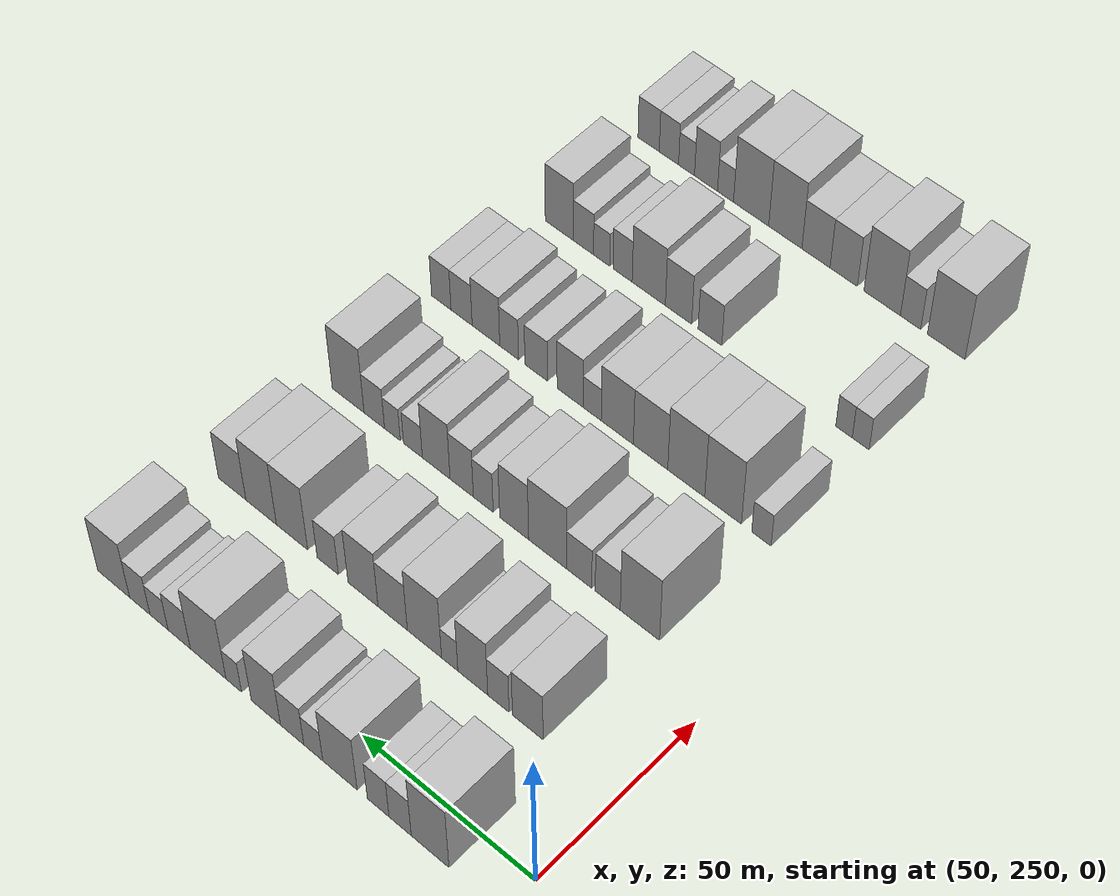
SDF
<sdf version="1.6">
 <world name="default">
  <model name="building_88">
   <static>1</static>
   <pose>50.0000 270.5247 0 0.000000 0.000000 0.000000</pose>
   <link name="link">
    <pose>0 0 12.00 0 0 0</pose>
    <collision name="collision"><geometry><box><size>20.0000 10.8127 24.0000</size></box></geometry></collision>
    <visual name="visual">
     <cast_shadows>0</cast_shadows>
     <geometry><box><size>20.0000 10.8127 24.0000</size></box></geometry>
     <material>
      <script>
       <uri>model://HANNAS_wall/materials/scripts</uri>
       <uri>model://HANNAS_wall/materials/textures</uri>
       <name>vrc/HANNAS_wall</name>
      </script>
     </material>
    </visual>
   </link>
  </model>
  <model name="building_89">
   <static>1</static>
   <pose>50.0000 279.1610 0 0.000000 0.000000 0.000000</pose>
   <link name="link">
    <pose>0 0 7.50 0 0 0</pose>
    <collision name="collision"><geometry><box><size>20.0000 6.4599 15.0000</size></box></geometry></collision>
    <visual name="visual">
     <cast_shadows>0</cast_shadows>
     <geometry><box><size>20.0000 6.4599 15.0000</size></box></geometry>
     <material>
      <script>
       <uri>model://HANNAS_wall/materials/scripts</uri>
       <uri>model://HANNAS_wall/materials/textures</uri>
       <name>vrc/HANNAS_wall</name>
      </script>
     </material>
    </visual>
   </link>
  </model>
  <model name="building_90">
   <static>1</static>
   <pose>50.0000 285.5674 0 0.000000 0.000000 0.000000</pose>
   <link name="link">
    <pose>0 0 7.50 0 0 0</pose>
    <collision name="collision"><geometry><box><size>20.0000 6.3528 15.0000</size></box></geometry></collision>
    <visual name="visual">
     <cast_shadows>0</cast_shadows>
     <geometry><box><size>20.0000 6.3528 15.0000</size></box></geometry>
     <material>
      <script>
       <uri>model://HANNAS_wall/materials/scripts</uri>
       <uri>model://HANNAS_wall/materials/textures</uri>
       <name>vrc/HANNAS_wall</name>
      </script>
     </material>
    </visual>
   </link>
  </model>
  <model name="building_91">
   <static>1</static>
   <pose>50.0000 296.8484 0 0.000000 0.000000 0.000000</pose>
   <link name="link">
    <pose>0 0 10.50 0 0 0</pose>
    <collision name="collision"><geometry><box><size>20.0000 10.2094 21.0000</size></box></geometry></collision>
    <visual name="visual">
     <cast_shadows>0</cast_shadows>
     <geometry><box><size>20.0000 10.2094 21.0000</size></box></geometry>
     <material>
      <script>
       <uri>model://HANNAS_wall/materials/scripts</uri>
       <uri>model://HANNAS_wall/materials/textures</uri>
       <name>vrc/HANNAS_wall</name>
      </script>
     </material>
    </visual>
   </link>
  </model>
  <model name="building_92">
   <static>1</static>
   <pose>50.0000 304.7949 0 0.000000 0.000000 0.000000</pose>
   <link name="link">
    <pose>0 0 6.00 0 0 0</pose>
    <collision name="collision"><geometry><box><size>20.0000 5.6836 12.0000</size></box></geometry></collision>
    <visual name="visual">
     <cast_shadows>0</cast_shadows>
     <geometry><box><size>20.0000 5.6836 12.0000</size></box></geometry>
     <material>
      <script>
       <uri>model://HANNAS_wall/materials/scripts</uri>
       <uri>model://HANNAS_wall/materials/textures</uri>
       <name>vrc/HANNAS_wall</name>
      </script>
     </material>
    </visual>
   </link>
  </model>
  <model name="building_93">
   <static>1</static>
   <pose>50.0000 311.1766 0 0.000000 0.000000 0.000000</pose>
   <link name="link">
    <pose>0 0 7.50 0 0 0</pose>
    <collision name="collision"><geometry><box><size>20.0000 7.0799 15.0000</size></box></geometry></collision>
    <visual name="visual">
     <cast_shadows>0</cast_shadows>
     <geometry><box><size>20.0000 7.0799 15.0000</size></box></geometry>
     <material>
      <script>
       <uri>model://HANNAS_wall/materials/scripts</uri>
       <uri>model://HANNAS_wall/materials/textures</uri>
       <name>vrc/HANNAS_wall</name>
      </script>
     </material>
    </visual>
   </link>
  </model>
  <model name="building_94">
   <static>1</static>
   <pose>50.0000 319.1856 0 0.000000 0.000000 0.000000</pose>
   <link name="link">
    <pose>0 0 10.50 0 0 0</pose>
    <collision name="collision"><geometry><box><size>20.0000 8.9381 21.0000</size></box></geometry></collision>
    <visual name="visual">
     <cast_shadows>0</cast_shadows>
     <geometry><box><size>20.0000 8.9381 21.0000</size></box></geometry>
     <material>
      <script>
       <uri>model://HANNAS_wall/materials/scripts</uri>
       <uri>model://HANNAS_wall/materials/textures</uri>
       <name>vrc/HANNAS_wall</name>
      </script>
     </material>
    </visual>
   </link>
  </model>
  <model name="building_95">
   <static>1</static>
   <pose>50.0000 329.0672 0 0.000000 0.000000 0.000000</pose>
   <link name="link">
    <pose>0 0 6.00 0 0 0</pose>
    <collision name="collision"><geometry><box><size>20.0000 4.8250 12.0000</size></box></geometry></collision>
    <visual name="visual">
     <cast_shadows>0</cast_shadows>
     <geometry><box><size>20.0000 4.8250 12.0000</size></box></geometry>
     <material>
      <script>
       <uri>model://HANNAS_wall/materials/scripts</uri>
       <uri>model://HANNAS_wall/materials/textures</uri>
       <name>vrc/HANNAS_wall</name>
      </script>
     </material>
    </visual>
   </link>
  </model>
  <model name="building_96">
   <static>1</static>
   <pose>50.0000 337.0704 0 0.000000 0.000000 0.000000</pose>
   <link name="link">
    <pose>0 0 12.00 0 0 0</pose>
    <collision name="collision"><geometry><box><size>20.0000 11.1813 24.0000</size></box></geometry></collision>
    <visual name="visual">
     <cast_shadows>0</cast_shadows>
     <geometry><box><size>20.0000 11.1813 24.0000</size></box></geometry>
     <material>
      <script>
       <uri>model://HANNAS_wall/materials/scripts</uri>
       <uri>model://HANNAS_wall/materials/textures</uri>
       <name>vrc/HANNAS_wall</name>
      </script>
     </material>
    </visual>
   </link>
  </model>
  <model name="building_97">
   <static>1</static>
   <pose>50.0000 346.1988 0 0.000000 0.000000 0.000000</pose>
   <link name="link">
    <pose>0 0 7.50 0 0 0</pose>
    <collision name="collision"><geometry><box><size>20.0000 7.0755 15.0000</size></box></geometry></collision>
    <visual name="visual">
     <cast_shadows>0</cast_shadows>
     <geometry><box><size>20.0000 7.0755 15.0000</size></box></geometry>
     <material>
      <script>
       <uri>model://HANNAS_wall/materials/scripts</uri>
       <uri>model://HANNAS_wall/materials/textures</uri>
       <name>vrc/HANNAS_wall</name>
      </script>
     </material>
    </visual>
   </link>
  </model>
  <model name="building_98">
   <static>1</static>
   <pose>50.0000 352.6234 0 0.000000 0.000000 0.000000</pose>
   <link name="link">
    <pose>0 0 6.00 0 0 0</pose>
    <collision name="collision"><geometry><box><size>20.0000 5.7739 12.0000</size></box></geometry></collision>
    <visual name="visual">
     <cast_shadows>0</cast_shadows>
     <geometry><box><size>20.0000 5.7739 12.0000</size></box></geometry>
     <material>
      <script>
       <uri>model://HANNAS_wall/materials/scripts</uri>
       <uri>model://HANNAS_wall/materials/textures</uri>
       <name>vrc/HANNAS_wall</name>
      </script>
     </material>
    </visual>
   </link>
  </model>
  <model name="building_99">
   <static>1</static>
   <pose>50.0000 358.7915 0 0.000000 0.000000 0.000000</pose>
   <link name="link">
    <pose>0 0 7.50 0 0 0</pose>
    <collision name="collision"><geometry><box><size>20.0000 6.5623 15.0000</size></box></geometry></collision>
    <visual name="visual">
     <cast_shadows>0</cast_shadows>
     <geometry><box><size>20.0000 6.5623 15.0000</size></box></geometry>
     <material>
      <script>
       <uri>model://HANNAS_wall/materials/scripts</uri>
       <uri>model://HANNAS_wall/materials/textures</uri>
       <name>vrc/HANNAS_wall</name>
      </script>
     </material>
    </visual>
   </link>
  </model>
  <model name="building_100">
   <static>1</static>
   <pose>50.0000 367.2585 0 0.000000 0.000000 0.000000</pose>
   <link name="link">
    <pose>0 0 10.50 0 0 0</pose>
    <collision name="collision"><geometry><box><size>20.0000 10.3717 21.0000</size></box></geometry></collision>
    <visual name="visual">
     <cast_shadows>0</cast_shadows>
     <geometry><box><size>20.0000 10.3717 21.0000</size></box></geometry>
     <material>
      <script>
       <uri>model://HANNAS_wall/materials/scripts</uri>
       <uri>model://HANNAS_wall/materials/textures</uri>
       <name>vrc/HANNAS_wall</name>
      </script>
     </material>
    </visual>
   </link>
  </model>
  <model name="building_216">
   <static>1</static>
   <pose>85.0000 275.5664 0 0.000000 0.000000 0.000000</pose>
   <link name="link">
    <pose>0 0 9.00 0 0 0</pose>
    <collision name="collision"><geometry><box><size>20.0000 8.8827 18.0000</size></box></geometry></collision>
    <visual name="visual">
     <cast_shadows>0</cast_shadows>
     <geometry><box><size>20.0000 8.8827 18.0000</size></box></geometry>
     <material>
      <script>
       <uri>model://HANNAS_wall/materials/scripts</uri>
       <uri>model://HANNAS_wall/materials/textures</uri>
       <name>vrc/HANNAS_wall</name>
      </script>
     </material>
    </visual>
   </link>
  </model>
  <model name="building_217">
   <static>1</static>
   <pose>85.0000 284.1300 0 0.000000 0.000000 0.000000</pose>
   <link name="link">
    <pose>0 0 7.50 0 0 0</pose>
    <collision name="collision"><geometry><box><size>20.0000 6.2444 15.0000</size></box></geometry></collision>
    <visual name="visual">
     <cast_shadows>0</cast_shadows>
     <geometry><box><size>20.0000 6.2444 15.0000</size></box></geometry>
     <material>
      <script>
       <uri>model://HANNAS_wall/materials/scripts</uri>
       <uri>model://HANNAS_wall/materials/textures</uri>
       <name>vrc/HANNAS_wall</name>
      </script>
     </material>
    </visual>
   </link>
  </model>
  <model name="building_218">
   <static>1</static>
   <pose>85.0000 291.6816 0 0.000000 0.000000 0.000000</pose>
   <link name="link">
    <pose>0 0 10.50 0 0 0</pose>
    <collision name="collision"><geometry><box><size>20.0000 8.8589 21.0000</size></box></geometry></collision>
    <visual name="visual">
     <cast_shadows>0</cast_shadows>
     <geometry><box><size>20.0000 8.8589 21.0000</size></box></geometry>
     <material>
      <script>
       <uri>model://HANNAS_wall/materials/scripts</uri>
       <uri>model://HANNAS_wall/materials/textures</uri>
       <name>vrc/HANNAS_wall</name>
      </script>
     </material>
    </visual>
   </link>
  </model>
  <model name="building_219">
   <static>1</static>
   <pose>85.0000 298.5380 0 0.000000 0.000000 0.000000</pose>
   <link name="link">
    <pose>0 0 6.00 0 0 0</pose>
    <collision name="collision"><geometry><box><size>20.0000 4.8538 12.0000</size></box></geometry></collision>
    <visual name="visual">
     <cast_shadows>0</cast_shadows>
     <geometry><box><size>20.0000 4.8538 12.0000</size></box></geometry>
     <material>
      <script>
       <uri>model://HANNAS_wall/materials/scripts</uri>
       <uri>model://HANNAS_wall/materials/textures</uri>
       <name>vrc/HANNAS_wall</name>
      </script>
     </material>
    </visual>
   </link>
  </model>
  <model name="building_220">
   <static>1</static>
   <pose>85.0000 306.1239 0 0.000000 0.000000 0.000000</pose>
   <link name="link">
    <pose>0 0 12.00 0 0 0</pose>
    <collision name="collision"><geometry><box><size>20.0000 10.3181 24.0000</size></box></geometry></collision>
    <visual name="visual">
     <cast_shadows>0</cast_shadows>
     <geometry><box><size>20.0000 10.3181 24.0000</size></box></geometry>
     <material>
      <script>
       <uri>model://HANNAS_wall/materials/scripts</uri>
       <uri>model://HANNAS_wall/materials/textures</uri>
       <name>vrc/HANNAS_wall</name>
      </script>
     </material>
    </visual>
   </link>
  </model>
  <model name="building_221">
   <static>1</static>
   <pose>85.0000 315.7586 0 0.000000 0.000000 0.000000</pose>
   <link name="link">
    <pose>0 0 9.00 0 0 0</pose>
    <collision name="collision"><geometry><box><size>20.0000 8.9513 18.0000</size></box></geometry></collision>
    <visual name="visual">
     <cast_shadows>0</cast_shadows>
     <geometry><box><size>20.0000 8.9513 18.0000</size></box></geometry>
     <material>
      <script>
       <uri>model://HANNAS_wall/materials/scripts</uri>
       <uri>model://HANNAS_wall/materials/textures</uri>
       <name>vrc/HANNAS_wall</name>
      </script>
     </material>
    </visual>
   </link>
  </model>
  <model name="building_222">
   <static>1</static>
   <pose>85.0000 324.8731 0 0.000000 0.000000 0.000000</pose>
   <link name="link">
    <pose>0 0 10.50 0 0 0</pose>
    <collision name="collision"><geometry><box><size>20.0000 9.2776 21.0000</size></box></geometry></collision>
    <visual name="visual">
     <cast_shadows>0</cast_shadows>
     <geometry><box><size>20.0000 9.2776 21.0000</size></box></geometry>
     <material>
      <script>
       <uri>model://HANNAS_wall/materials/scripts</uri>
       <uri>model://HANNAS_wall/materials/textures</uri>
       <name>vrc/HANNAS_wall</name>
      </script>
     </material>
    </visual>
   </link>
  </model>
  <model name="building_223">
   <static>1</static>
   <pose>85.0000 335.8381 0 0.000000 0.000000 0.000000</pose>
   <link name="link">
    <pose>0 0 7.50 0 0 0</pose>
    <collision name="collision"><geometry><box><size>20.0000 6.6525 15.0000</size></box></geometry></collision>
    <visual name="visual">
     <cast_shadows>0</cast_shadows>
     <geometry><box><size>20.0000 6.6525 15.0000</size></box></geometry>
     <material>
      <script>
       <uri>model://HANNAS_wall/materials/scripts</uri>
       <uri>model://HANNAS_wall/materials/textures</uri>
       <name>vrc/HANNAS_wall</name>
      </script>
     </material>
    </visual>
   </link>
  </model>
  <model name="building_224">
   <static>1</static>
   <pose>85.0000 347.1296 0 0.000000 0.000000 0.000000</pose>
   <link name="link">
    <pose>0 0 12.00 0 0 0</pose>
    <collision name="collision"><geometry><box><size>20.0000 9.9305 24.0000</size></box></geometry></collision>
    <visual name="visual">
     <cast_shadows>0</cast_shadows>
     <geometry><box><size>20.0000 9.9305 24.0000</size></box></geometry>
     <material>
      <script>
       <uri>model://HANNAS_wall/materials/scripts</uri>
       <uri>model://HANNAS_wall/materials/textures</uri>
       <name>vrc/HANNAS_wall</name>
      </script>
     </material>
    </visual>
   </link>
  </model>
  <model name="building_225">
   <static>1</static>
   <pose>85.0000 357.0071 0 0.000000 0.000000 0.000000</pose>
   <link name="link">
    <pose>0 0 12.00 0 0 0</pose>
    <collision name="collision"><geometry><box><size>20.0000 9.8245 24.0000</size></box></geometry></collision>
    <visual name="visual">
     <cast_shadows>0</cast_shadows>
     <geometry><box><size>20.0000 9.8245 24.0000</size></box></geometry>
     <material>
      <script>
       <uri>model://HANNAS_wall/materials/scripts</uri>
       <uri>model://HANNAS_wall/materials/textures</uri>
       <name>vrc/HANNAS_wall</name>
      </script>
     </material>
    </visual>
   </link>
  </model>
  <model name="building_226">
   <static>1</static>
   <pose>85.0000 366.3781 0 0.000000 0.000000 0.000000</pose>
   <link name="link">
    <pose>0 0 9.00 0 0 0</pose>
    <collision name="collision"><geometry><box><size>20.0000 8.9176 18.0000</size></box></geometry></collision>
    <visual name="visual">
     <cast_shadows>0</cast_shadows>
     <geometry><box><size>20.0000 8.9176 18.0000</size></box></geometry>
     <material>
      <script>
       <uri>model://HANNAS_wall/materials/scripts</uri>
       <uri>model://HANNAS_wall/materials/textures</uri>
       <name>vrc/HANNAS_wall</name>
      </script>
     </material>
    </visual>
   </link>
  </model>
  <model name="building_345">
   <static>1</static>
   <pose>120.0000 274.8458 0 0.000000 0.000000 0.000000</pose>
   <link name="link">
    <pose>0 0 12.00 0 0 0</pose>
    <collision name="collision"><geometry><box><size>20.0000 11.4162 24.0000</size></box></geometry></collision>
    <visual name="visual">
     <cast_shadows>0</cast_shadows>
     <geometry><box><size>20.0000 11.4162 24.0000</size></box></geometry>
     <material>
      <script>
       <uri>model://HANNAS_wall/materials/scripts</uri>
       <uri>model://HANNAS_wall/materials/textures</uri>
       <name>vrc/HANNAS_wall</name>
      </script>
     </material>
    </visual>
   </link>
  </model>
  <model name="building_346">
   <static>1</static>
   <pose>120.0000 284.2434 0 0.000000 0.000000 0.000000</pose>
   <link name="link">
    <pose>0 0 7.50 0 0 0</pose>
    <collision name="collision"><geometry><box><size>20.0000 7.3789 15.0000</size></box></geometry></collision>
    <visual name="visual">
     <cast_shadows>0</cast_shadows>
     <geometry><box><size>20.0000 7.3789 15.0000</size></box></geometry>
     <material>
      <script>
       <uri>model://HANNAS_wall/materials/scripts</uri>
       <uri>model://HANNAS_wall/materials/textures</uri>
       <name>vrc/HANNAS_wall</name>
      </script>
     </material>
    </visual>
   </link>
  </model>
  <model name="building_347">
   <static>1</static>
   <pose>120.0000 292.6446 0 0.000000 0.000000 0.000000</pose>
   <link name="link">
    <pose>0 0 7.50 0 0 0</pose>
    <collision name="collision"><geometry><box><size>20.0000 7.4235 15.0000</size></box></geometry></collision>
    <visual name="visual">
     <cast_shadows>0</cast_shadows>
     <geometry><box><size>20.0000 7.4235 15.0000</size></box></geometry>
     <material>
      <script>
       <uri>model://HANNAS_wall/materials/scripts</uri>
       <uri>model://HANNAS_wall/materials/textures</uri>
       <name>vrc/HANNAS_wall</name>
      </script>
     </material>
    </visual>
   </link>
  </model>
  <model name="building_348">
   <static>1</static>
   <pose>120.0000 302.1061 0 0.000000 0.000000 0.000000</pose>
   <link name="link">
    <pose>0 0 12.00 0 0 0</pose>
    <collision name="collision"><geometry><box><size>20.0000 11.4995 24.0000</size></box></geometry></collision>
    <visual name="visual">
     <cast_shadows>0</cast_shadows>
     <geometry><box><size>20.0000 11.4995 24.0000</size></box></geometry>
     <material>
      <script>
       <uri>model://HANNAS_wall/materials/scripts</uri>
       <uri>model://HANNAS_wall/materials/textures</uri>
       <name>vrc/HANNAS_wall</name>
      </script>
     </material>
    </visual>
   </link>
  </model>
  <model name="building_349">
   <static>1</static>
   <pose>120.0000 312.2673 0 0.000000 0.000000 0.000000</pose>
   <link name="link">
    <pose>0 0 10.50 0 0 0</pose>
    <collision name="collision"><geometry><box><size>20.0000 8.8228 21.0000</size></box></geometry></collision>
    <visual name="visual">
     <cast_shadows>0</cast_shadows>
     <geometry><box><size>20.0000 8.8228 21.0000</size></box></geometry>
     <material>
      <script>
       <uri>model://HANNAS_wall/materials/scripts</uri>
       <uri>model://HANNAS_wall/materials/textures</uri>
       <name>vrc/HANNAS_wall</name>
      </script>
     </material>
    </visual>
   </link>
  </model>
  <model name="building_350">
   <static>1</static>
   <pose>120.0000 321.7438 0 0.000000 0.000000 0.000000</pose>
   <link name="link">
    <pose>0 0 7.50 0 0 0</pose>
    <collision name="collision"><geometry><box><size>20.0000 6.1302 15.0000</size></box></geometry></collision>
    <visual name="visual">
     <cast_shadows>0</cast_shadows>
     <geometry><box><size>20.0000 6.1302 15.0000</size></box></geometry>
     <material>
      <script>
       <uri>model://HANNAS_wall/materials/scripts</uri>
       <uri>model://HANNAS_wall/materials/textures</uri>
       <name>vrc/HANNAS_wall</name>
      </script>
     </material>
    </visual>
   </link>
  </model>
  <model name="building_351">
   <static>1</static>
   <pose>120.0000 328.4370 0 0.000000 0.000000 0.000000</pose>
   <link name="link">
    <pose>0 0 9.00 0 0 0</pose>
    <collision name="collision"><geometry><box><size>20.0000 7.2563 18.0000</size></box></geometry></collision>
    <visual name="visual">
     <cast_shadows>0</cast_shadows>
     <geometry><box><size>20.0000 7.2563 18.0000</size></box></geometry>
     <material>
      <script>
       <uri>model://HANNAS_wall/materials/scripts</uri>
       <uri>model://HANNAS_wall/materials/textures</uri>
       <name>vrc/HANNAS_wall</name>
      </script>
     </material>
    </visual>
   </link>
  </model>
  <model name="building_352">
   <static>1</static>
   <pose>120.0000 336.4227 0 0.000000 0.000000 0.000000</pose>
   <link name="link">
    <pose>0 0 10.50 0 0 0</pose>
    <collision name="collision"><geometry><box><size>20.0000 8.7149 21.0000</size></box></geometry></collision>
    <visual name="visual">
     <cast_shadows>0</cast_shadows>
     <geometry><box><size>20.0000 8.7149 21.0000</size></box></geometry>
     <material>
      <script>
       <uri>model://HANNAS_wall/materials/scripts</uri>
       <uri>model://HANNAS_wall/materials/textures</uri>
       <name>vrc/HANNAS_wall</name>
      </script>
     </material>
    </visual>
   </link>
  </model>
  <model name="building_353">
   <static>1</static>
   <pose>120.0000 343.7650 0 0.000000 0.000000 0.000000</pose>
   <link name="link">
    <pose>0 0 6.00 0 0 0</pose>
    <collision name="collision"><geometry><box><size>20.0000 5.9697 12.0000</size></box></geometry></collision>
    <visual name="visual">
     <cast_shadows>0</cast_shadows>
     <geometry><box><size>20.0000 5.9697 12.0000</size></box></geometry>
     <material>
      <script>
       <uri>model://HANNAS_wall/materials/scripts</uri>
       <uri>model://HANNAS_wall/materials/textures</uri>
       <name>vrc/HANNAS_wall</name>
      </script>
     </material>
    </visual>
   </link>
  </model>
  <model name="building_354">
   <static>1</static>
   <pose>120.0000 350.2723 0 0.000000 0.000000 0.000000</pose>
   <link name="link">
    <pose>0 0 6.00 0 0 0</pose>
    <collision name="collision"><geometry><box><size>20.0000 5.0449 12.0000</size></box></geometry></collision>
    <visual name="visual">
     <cast_shadows>0</cast_shadows>
     <geometry><box><size>20.0000 5.0449 12.0000</size></box></geometry>
     <material>
      <script>
       <uri>model://HANNAS_wall/materials/scripts</uri>
       <uri>model://HANNAS_wall/materials/textures</uri>
       <name>vrc/HANNAS_wall</name>
      </script>
     </material>
    </visual>
   </link>
  </model>
  <model name="building_355">
   <static>1</static>
   <pose>120.0000 356.0883 0 0.000000 0.000000 0.000000</pose>
   <link name="link">
    <pose>0 0 7.50 0 0 0</pose>
    <collision name="collision"><geometry><box><size>20.0000 6.5872 15.0000</size></box></geometry></collision>
    <visual name="visual">
     <cast_shadows>0</cast_shadows>
     <geometry><box><size>20.0000 6.5872 15.0000</size></box></geometry>
     <material>
      <script>
       <uri>model://HANNAS_wall/materials/scripts</uri>
       <uri>model://HANNAS_wall/materials/textures</uri>
       <name>vrc/HANNAS_wall</name>
      </script>
     </material>
    </visual>
   </link>
  </model>
  <model name="building_356">
   <static>1</static>
   <pose>120.0000 364.5451 0 0.000000 0.000000 0.000000</pose>
   <link name="link">
    <pose>0 0 12.00 0 0 0</pose>
    <collision name="collision"><geometry><box><size>20.0000 10.3263 24.0000</size></box></geometry></collision>
    <visual name="visual">
     <cast_shadows>0</cast_shadows>
     <geometry><box><size>20.0000 10.3263 24.0000</size></box></geometry>
     <material>
      <script>
       <uri>model://HANNAS_wall/materials/scripts</uri>
       <uri>model://HANNAS_wall/materials/textures</uri>
       <name>vrc/HANNAS_wall</name>
      </script>
     </material>
    </visual>
   </link>
  </model>
  <model name="building_471">
   <static>1</static>
   <pose>155.0000 269.8274 0 0.000000 0.000000 0.000000</pose>
   <link name="link">
    <pose>0 0 6.00 0 0 0</pose>
    <collision name="collision"><geometry><box><size>20.0000 5.6359 12.0000</size></box></geometry></collision>
    <visual name="visual">
     <cast_shadows>0</cast_shadows>
     <geometry><box><size>20.0000 5.6359 12.0000</size></box></geometry>
     <material>
      <script>
       <uri>model://HANNAS_wall/materials/scripts</uri>
       <uri>model://HANNAS_wall/materials/textures</uri>
       <name>vrc/HANNAS_wall</name>
      </script>
     </material>
    </visual>
   </link>
  </model>
  <model name="building_472">
   <static>1</static>
   <pose>155.0000 281.0553 0 0.000000 0.000000 0.000000</pose>
   <link name="link">
    <pose>0 0 12.00 0 0 0</pose>
    <collision name="collision"><geometry><box><size>20.0000 10.8199 24.0000</size></box></geometry></collision>
    <visual name="visual">
     <cast_shadows>0</cast_shadows>
     <geometry><box><size>20.0000 10.8199 24.0000</size></box></geometry>
     <material>
      <script>
       <uri>model://HANNAS_wall/materials/scripts</uri>
       <uri>model://HANNAS_wall/materials/textures</uri>
       <name>vrc/HANNAS_wall</name>
      </script>
     </material>
    </visual>
   </link>
  </model>
  <model name="building_473">
   <static>1</static>
   <pose>155.0000 291.9815 0 0.000000 0.000000 0.000000</pose>
   <link name="link">
    <pose>0 0 12.00 0 0 0</pose>
    <collision name="collision"><geometry><box><size>20.0000 11.0326 24.0000</size></box></geometry></collision>
    <visual name="visual">
     <cast_shadows>0</cast_shadows>
     <geometry><box><size>20.0000 11.0326 24.0000</size></box></geometry>
     <material>
      <script>
       <uri>model://HANNAS_wall/materials/scripts</uri>
       <uri>model://HANNAS_wall/materials/textures</uri>
       <name>vrc/HANNAS_wall</name>
      </script>
     </material>
    </visual>
   </link>
  </model>
  <model name="building_474">
   <static>1</static>
   <pose>155.0000 302.7013 0 0.000000 0.000000 0.000000</pose>
   <link name="link">
    <pose>0 0 10.50 0 0 0</pose>
    <collision name="collision"><geometry><box><size>20.0000 10.4070 21.0000</size></box></geometry></collision>
    <visual name="visual">
     <cast_shadows>0</cast_shadows>
     <geometry><box><size>20.0000 10.4070 21.0000</size></box></geometry>
     <material>
      <script>
       <uri>model://HANNAS_wall/materials/scripts</uri>
       <uri>model://HANNAS_wall/materials/textures</uri>
       <name>vrc/HANNAS_wall</name>
      </script>
     </material>
    </visual>
   </link>
  </model>
  <model name="building_475">
   <static>1</static>
   <pose>155.0000 312.8124 0 0.000000 0.000000 0.000000</pose>
   <link name="link">
    <pose>0 0 10.50 0 0 0</pose>
    <collision name="collision"><geometry><box><size>20.0000 9.8151 21.0000</size></box></geometry></collision>
    <visual name="visual">
     <cast_shadows>0</cast_shadows>
     <geometry><box><size>20.0000 9.8151 21.0000</size></box></geometry>
     <material>
      <script>
       <uri>model://HANNAS_wall/materials/scripts</uri>
       <uri>model://HANNAS_wall/materials/textures</uri>
       <name>vrc/HANNAS_wall</name>
      </script>
     </material>
    </visual>
   </link>
  </model>
  <model name="building_476">
   <static>1</static>
   <pose>155.0000 320.5267 0 0.000000 0.000000 0.000000</pose>
   <link name="link">
    <pose>0 0 6.00 0 0 0</pose>
    <collision name="collision"><geometry><box><size>20.0000 5.6135 12.0000</size></box></geometry></collision>
    <visual name="visual">
     <cast_shadows>0</cast_shadows>
     <geometry><box><size>20.0000 5.6135 12.0000</size></box></geometry>
     <material>
      <script>
       <uri>model://HANNAS_wall/materials/scripts</uri>
       <uri>model://HANNAS_wall/materials/textures</uri>
       <name>vrc/HANNAS_wall</name>
      </script>
     </material>
    </visual>
   </link>
  </model>
  <model name="building_477">
   <static>1</static>
   <pose>155.0000 327.3897 0 0.000000 0.000000 0.000000</pose>
   <link name="link">
    <pose>0 0 9.00 0 0 0</pose>
    <collision name="collision"><geometry><box><size>20.0000 8.1125 18.0000</size></box></geometry></collision>
    <visual name="visual">
     <cast_shadows>0</cast_shadows>
     <geometry><box><size>20.0000 8.1125 18.0000</size></box></geometry>
     <material>
      <script>
       <uri>model://HANNAS_wall/materials/scripts</uri>
       <uri>model://HANNAS_wall/materials/textures</uri>
       <name>vrc/HANNAS_wall</name>
      </script>
     </material>
    </visual>
   </link>
  </model>
  <model name="building_478">
   <static>1</static>
   <pose>155.0000 338.0175 0 0.000000 0.000000 0.000000</pose>
   <link name="link">
    <pose>0 0 7.50 0 0 0</pose>
    <collision name="collision"><geometry><box><size>20.0000 7.1431 15.0000</size></box></geometry></collision>
    <visual name="visual">
     <cast_shadows>0</cast_shadows>
     <geometry><box><size>20.0000 7.1431 15.0000</size></box></geometry>
     <material>
      <script>
       <uri>model://HANNAS_wall/materials/scripts</uri>
       <uri>model://HANNAS_wall/materials/textures</uri>
       <name>vrc/HANNAS_wall</name>
      </script>
     </material>
    </visual>
   </link>
  </model>
  <model name="building_479">
   <static>1</static>
   <pose>155.0000 346.5962 0 0.000000 0.000000 0.000000</pose>
   <link name="link">
    <pose>0 0 7.50 0 0 0</pose>
    <collision name="collision"><geometry><box><size>20.0000 6.0142 15.0000</size></box></geometry></collision>
    <visual name="visual">
     <cast_shadows>0</cast_shadows>
     <geometry><box><size>20.0000 6.0142 15.0000</size></box></geometry>
     <material>
      <script>
       <uri>model://HANNAS_wall/materials/scripts</uri>
       <uri>model://HANNAS_wall/materials/textures</uri>
       <name>vrc/HANNAS_wall</name>
      </script>
     </material>
    </visual>
   </link>
  </model>
  <model name="building_480">
   <static>1</static>
   <pose>155.0000 354.0570 0 0.000000 0.000000 0.000000</pose>
   <link name="link">
    <pose>0 0 9.00 0 0 0</pose>
    <collision name="collision"><geometry><box><size>20.0000 8.9074 18.0000</size></box></geometry></collision>
    <visual name="visual">
     <cast_shadows>0</cast_shadows>
     <geometry><box><size>20.0000 8.9074 18.0000</size></box></geometry>
     <material>
      <script>
       <uri>model://HANNAS_wall/materials/scripts</uri>
       <uri>model://HANNAS_wall/materials/textures</uri>
       <name>vrc/HANNAS_wall</name>
      </script>
     </material>
    </visual>
   </link>
  </model>
  <model name="building_481">
   <static>1</static>
   <pose>155.0000 361.9390 0 0.000000 0.000000 0.000000</pose>
   <link name="link">
    <pose>0 0 7.50 0 0 0</pose>
    <collision name="collision"><geometry><box><size>20.0000 6.8565 15.0000</size></box></geometry></collision>
    <visual name="visual">
     <cast_shadows>0</cast_shadows>
     <geometry><box><size>20.0000 6.8565 15.0000</size></box></geometry>
     <material>
      <script>
       <uri>model://HANNAS_wall/materials/scripts</uri>
       <uri>model://HANNAS_wall/materials/textures</uri>
       <name>vrc/HANNAS_wall</name>
      </script>
     </material>
    </visual>
   </link>
  </model>
  <model name="building_482">
   <static>1</static>
   <pose>155.0000 368.5460 0 0.000000 0.000000 0.000000</pose>
   <link name="link">
    <pose>0 0 7.50 0 0 0</pose>
    <collision name="collision"><geometry><box><size>20.0000 6.3576 15.0000</size></box></geometry></collision>
    <visual name="visual">
     <cast_shadows>0</cast_shadows>
     <geometry><box><size>20.0000 6.3576 15.0000</size></box></geometry>
     <material>
      <script>
       <uri>model://HANNAS_wall/materials/scripts</uri>
       <uri>model://HANNAS_wall/materials/textures</uri>
       <name>vrc/HANNAS_wall</name>
      </script>
     </material>
    </visual>
   </link>
  </model>
  <model name="building_597">
   <static>1</static>
   <pose>190.0000 269.8206 0 0.000000 0.000000 0.000000</pose>
   <link name="link">
    <pose>0 0 6.00 0 0 0</pose>
    <collision name="collision"><geometry><box><size>20.0000 4.9380 12.0000</size></box></geometry></collision>
    <visual name="visual">
     <cast_shadows>0</cast_shadows>
     <geometry><box><size>20.0000 4.9380 12.0000</size></box></geometry>
     <material>
      <script>
       <uri>model://HANNAS_wall/materials/scripts</uri>
       <uri>model://HANNAS_wall/materials/textures</uri>
       <name>vrc/HANNAS_wall</name>
      </script>
     </material>
    </visual>
   </link>
  </model>
  <model name="building_598">
   <static>1</static>
   <pose>190.0000 274.7164 0 0.000000 0.000000 0.000000</pose>
   <link name="link">
    <pose>0 0 6.00 0 0 0</pose>
    <collision name="collision"><geometry><box><size>20.0000 4.8535 12.0000</size></box></geometry></collision>
    <visual name="visual">
     <cast_shadows>0</cast_shadows>
     <geometry><box><size>20.0000 4.8535 12.0000</size></box></geometry>
     <material>
      <script>
       <uri>model://HANNAS_wall/materials/scripts</uri>
       <uri>model://HANNAS_wall/materials/textures</uri>
       <name>vrc/HANNAS_wall</name>
      </script>
     </material>
    </visual>
   </link>
  </model>
  <model name="building_599">
   <static>1</static>
   <pose>190.0000 315.1016 0 0.000000 0.000000 0.000000</pose>
   <link name="link">
    <pose>0 0 7.50 0 0 0</pose>
    <collision name="collision"><geometry><box><size>20.0000 7.3057 15.0000</size></box></geometry></collision>
    <visual name="visual">
     <cast_shadows>0</cast_shadows>
     <geometry><box><size>20.0000 7.3057 15.0000</size></box></geometry>
     <material>
      <script>
       <uri>model://HANNAS_wall/materials/scripts</uri>
       <uri>model://HANNAS_wall/materials/textures</uri>
       <name>vrc/HANNAS_wall</name>
      </script>
     </material>
    </visual>
   </link>
  </model>
  <model name="building_600">
   <static>1</static>
   <pose>190.0000 324.8645 0 0.000000 0.000000 0.000000</pose>
   <link name="link">
    <pose>0 0 9.00 0 0 0</pose>
    <collision name="collision"><geometry><box><size>20.0000 8.2201 18.0000</size></box></geometry></collision>
    <visual name="visual">
     <cast_shadows>0</cast_shadows>
     <geometry><box><size>20.0000 8.2201 18.0000</size></box></geometry>
     <material>
      <script>
       <uri>model://HANNAS_wall/materials/scripts</uri>
       <uri>model://HANNAS_wall/materials/textures</uri>
       <name>vrc/HANNAS_wall</name>
      </script>
     </material>
    </visual>
   </link>
  </model>
  <model name="building_601">
   <static>1</static>
   <pose>190.0000 334.2076 0 0.000000 0.000000 0.000000</pose>
   <link name="link">
    <pose>0 0 10.50 0 0 0</pose>
    <collision name="collision"><geometry><box><size>20.0000 10.4663 21.0000</size></box></geometry></collision>
    <visual name="visual">
     <cast_shadows>0</cast_shadows>
     <geometry><box><size>20.0000 10.4663 21.0000</size></box></geometry>
     <material>
      <script>
       <uri>model://HANNAS_wall/materials/scripts</uri>
       <uri>model://HANNAS_wall/materials/textures</uri>
       <name>vrc/HANNAS_wall</name>
      </script>
     </material>
    </visual>
   </link>
  </model>
  <model name="building_602">
   <static>1</static>
   <pose>190.0000 342.4834 0 0.000000 0.000000 0.000000</pose>
   <link name="link">
    <pose>0 0 7.50 0 0 0</pose>
    <collision name="collision"><geometry><box><size>20.0000 6.0854 15.0000</size></box></geometry></collision>
    <visual name="visual">
     <cast_shadows>0</cast_shadows>
     <geometry><box><size>20.0000 6.0854 15.0000</size></box></geometry>
     <material>
      <script>
       <uri>model://HANNAS_wall/materials/scripts</uri>
       <uri>model://HANNAS_wall/materials/textures</uri>
       <name>vrc/HANNAS_wall</name>
      </script>
     </material>
    </visual>
   </link>
  </model>
  <model name="building_603">
   <static>1</static>
   <pose>190.0000 349.1581 0 0.000000 0.000000 0.000000</pose>
   <link name="link">
    <pose>0 0 6.00 0 0 0</pose>
    <collision name="collision"><geometry><box><size>20.0000 5.2641 12.0000</size></box></geometry></collision>
    <visual name="visual">
     <cast_shadows>0</cast_shadows>
     <geometry><box><size>20.0000 5.2641 12.0000</size></box></geometry>
     <material>
      <script>
       <uri>model://HANNAS_wall/materials/scripts</uri>
       <uri>model://HANNAS_wall/materials/textures</uri>
       <name>vrc/HANNAS_wall</name>
      </script>
     </material>
    </visual>
   </link>
  </model>
  <model name="building_604">
   <static>1</static>
   <pose>190.0000 355.0052 0 0.000000 0.000000 0.000000</pose>
   <link name="link">
    <pose>0 0 7.50 0 0 0</pose>
    <collision name="collision"><geometry><box><size>20.0000 6.4300 15.0000</size></box></geometry></collision>
    <visual name="visual">
     <cast_shadows>0</cast_shadows>
     <geometry><box><size>20.0000 6.4300 15.0000</size></box></geometry>
     <material>
      <script>
       <uri>model://HANNAS_wall/materials/scripts</uri>
       <uri>model://HANNAS_wall/materials/textures</uri>
       <name>vrc/HANNAS_wall</name>
      </script>
     </material>
    </visual>
   </link>
  </model>
  <model name="building_605">
   <static>1</static>
   <pose>190.0000 362.8344 0 0.000000 0.000000 0.000000</pose>
   <link name="link">
    <pose>0 0 10.50 0 0 0</pose>
    <collision name="collision"><geometry><box><size>20.0000 9.2285 21.0000</size></box></geometry></collision>
    <visual name="visual">
     <cast_shadows>0</cast_shadows>
     <geometry><box><size>20.0000 9.2285 21.0000</size></box></geometry>
     <material>
      <script>
       <uri>model://HANNAS_wall/materials/scripts</uri>
       <uri>model://HANNAS_wall/materials/textures</uri>
       <name>vrc/HANNAS_wall</name>
      </script>
     </material>
    </visual>
   </link>
  </model>
  <model name="building_723">
   <static>1</static>
   <pose>225.0000 272.5620 0 0.000000 0.000000 0.000000</pose>
   <link name="link">
    <pose>0 0 12.00 0 0 0</pose>
    <collision name="collision"><geometry><box><size>20.0000 11.0631 24.0000</size></box></geometry></collision>
    <visual name="visual">
     <cast_shadows>0</cast_shadows>
     <geometry><box><size>20.0000 11.0631 24.0000</size></box></geometry>
     <material>
      <script>
       <uri>model://HANNAS_wall/materials/scripts</uri>
       <uri>model://HANNAS_wall/materials/textures</uri>
       <name>vrc/HANNAS_wall</name>
      </script>
     </material>
    </visual>
   </link>
  </model>
  <model name="building_724">
   <static>1</static>
   <pose>225.0000 283.1289 0 0.000000 0.000000 0.000000</pose>
   <link name="link">
    <pose>0 0 7.50 0 0 0</pose>
    <collision name="collision"><geometry><box><size>20.0000 6.0708 15.0000</size></box></geometry></collision>
    <visual name="visual">
     <cast_shadows>0</cast_shadows>
     <geometry><box><size>20.0000 6.0708 15.0000</size></box></geometry>
     <material>
      <script>
       <uri>model://HANNAS_wall/materials/scripts</uri>
       <uri>model://HANNAS_wall/materials/textures</uri>
       <name>vrc/HANNAS_wall</name>
      </script>
     </material>
    </visual>
   </link>
  </model>
  <model name="building_725">
   <static>1</static>
   <pose>225.0000 291.6642 0 0.000000 0.000000 0.000000</pose>
   <link name="link">
    <pose>0 0 12.00 0 0 0</pose>
    <collision name="collision"><geometry><box><size>20.0000 10.9999 24.0000</size></box></geometry></collision>
    <visual name="visual">
     <cast_shadows>0</cast_shadows>
     <geometry><box><size>20.0000 10.9999 24.0000</size></box></geometry>
     <material>
      <script>
       <uri>model://HANNAS_wall/materials/scripts</uri>
       <uri>model://HANNAS_wall/materials/textures</uri>
       <name>vrc/HANNAS_wall</name>
      </script>
     </material>
    </visual>
   </link>
  </model>
  <model name="building_726">
   <static>1</static>
   <pose>225.0000 303.3538 0 0.000000 0.000000 0.000000</pose>
   <link name="link">
    <pose>0 0 9.00 0 0 0</pose>
    <collision name="collision"><geometry><box><size>20.0000 8.3792 18.0000</size></box></geometry></collision>
    <visual name="visual">
     <cast_shadows>0</cast_shadows>
     <geometry><box><size>20.0000 8.3792 18.0000</size></box></geometry>
     <material>
      <script>
       <uri>model://HANNAS_wall/materials/scripts</uri>
       <uri>model://HANNAS_wall/materials/textures</uri>
       <name>vrc/HANNAS_wall</name>
      </script>
     </material>
    </visual>
   </link>
  </model>
  <model name="building_727">
   <static>1</static>
   <pose>225.0000 311.8870 0 0.000000 0.000000 0.000000</pose>
   <link name="link">
    <pose>0 0 9.00 0 0 0</pose>
    <collision name="collision"><geometry><box><size>20.0000 8.6873 18.0000</size></box></geometry></collision>
    <visual name="visual">
     <cast_shadows>0</cast_shadows>
     <geometry><box><size>20.0000 8.6873 18.0000</size></box></geometry>
     <material>
      <script>
       <uri>model://HANNAS_wall/materials/scripts</uri>
       <uri>model://HANNAS_wall/materials/textures</uri>
       <name>vrc/HANNAS_wall</name>
      </script>
     </material>
    </visual>
   </link>
  </model>
  <model name="building_728">
   <static>1</static>
   <pose>225.0000 321.4229 0 0.000000 0.000000 0.000000</pose>
   <link name="link">
    <pose>0 0 12.00 0 0 0</pose>
    <collision name="collision"><geometry><box><size>20.0000 10.3844 24.0000</size></box></geometry></collision>
    <visual name="visual">
     <cast_shadows>0</cast_shadows>
     <geometry><box><size>20.0000 10.3844 24.0000</size></box></geometry>
     <material>
      <script>
       <uri>model://HANNAS_wall/materials/scripts</uri>
       <uri>model://HANNAS_wall/materials/textures</uri>
       <name>vrc/HANNAS_wall</name>
      </script>
     </material>
    </visual>
   </link>
  </model>
  <model name="building_729">
   <static>1</static>
   <pose>225.0000 332.1794 0 0.000000 0.000000 0.000000</pose>
   <link name="link">
    <pose>0 0 12.00 0 0 0</pose>
    <collision name="collision"><geometry><box><size>20.0000 11.1286 24.0000</size></box></geometry></collision>
    <visual name="visual">
     <cast_shadows>0</cast_shadows>
     <geometry><box><size>20.0000 11.1286 24.0000</size></box></geometry>
     <material>
      <script>
       <uri>model://HANNAS_wall/materials/scripts</uri>
       <uri>model://HANNAS_wall/materials/textures</uri>
       <name>vrc/HANNAS_wall</name>
      </script>
     </material>
    </visual>
   </link>
  </model>
  <model name="building_730">
   <static>1</static>
   <pose>225.0000 340.2972 0 0.000000 0.000000 0.000000</pose>
   <link name="link">
    <pose>0 0 6.00 0 0 0</pose>
    <collision name="collision"><geometry><box><size>20.0000 5.1072 12.0000</size></box></geometry></collision>
    <visual name="visual">
     <cast_shadows>0</cast_shadows>
     <geometry><box><size>20.0000 5.1072 12.0000</size></box></geometry>
     <material>
      <script>
       <uri>model://HANNAS_wall/materials/scripts</uri>
       <uri>model://HANNAS_wall/materials/textures</uri>
       <name>vrc/HANNAS_wall</name>
      </script>
     </material>
    </visual>
   </link>
  </model>
  <model name="building_731">
   <static>1</static>
   <pose>225.0000 346.5454 0 0.000000 0.000000 0.000000</pose>
   <link name="link">
    <pose>0 0 9.00 0 0 0</pose>
    <collision name="collision"><geometry><box><size>20.0000 7.3891 18.0000</size></box></geometry></collision>
    <visual name="visual">
     <cast_shadows>0</cast_shadows>
     <geometry><box><size>20.0000 7.3891 18.0000</size></box></geometry>
     <material>
      <script>
       <uri>model://HANNAS_wall/materials/scripts</uri>
       <uri>model://HANNAS_wall/materials/textures</uri>
       <name>vrc/HANNAS_wall</name>
      </script>
     </material>
    </visual>
   </link>
  </model>
  <model name="building_732">
   <static>1</static>
   <pose>225.0000 352.8248 0 0.000000 0.000000 0.000000</pose>
   <link name="link">
    <pose>0 0 6.00 0 0 0</pose>
    <collision name="collision"><geometry><box><size>20.0000 5.1696 12.0000</size></box></geometry></collision>
    <visual name="visual">
     <cast_shadows>0</cast_shadows>
     <geometry><box><size>20.0000 5.1696 12.0000</size></box></geometry>
     <material>
      <script>
       <uri>model://HANNAS_wall/materials/scripts</uri>
       <uri>model://HANNAS_wall/materials/textures</uri>
       <name>vrc/HANNAS_wall</name>
      </script>
     </material>
    </visual>
   </link>
  </model>
  <model name="building_733">
   <static>1</static>
   <pose>225.0000 358.5647 0 0.000000 0.000000 0.000000</pose>
   <link name="link">
    <pose>0 0 7.50 0 0 0</pose>
    <collision name="collision"><geometry><box><size>20.0000 6.3101 15.0000</size></box></geometry></collision>
    <visual name="visual">
     <cast_shadows>0</cast_shadows>
     <geometry><box><size>20.0000 6.3101 15.0000</size></box></geometry>
     <material>
      <script>
       <uri>model://HANNAS_wall/materials/scripts</uri>
       <uri>model://HANNAS_wall/materials/textures</uri>
       <name>vrc/HANNAS_wall</name>
      </script>
     </material>
    </visual>
   </link>
  </model>
  <model name="building_734">
   <static>1</static>
   <pose>225.0000 365.2063 0 0.000000 0.000000 0.000000</pose>
   <link name="link">
    <pose>0 0 7.50 0 0 0</pose>
    <collision name="collision"><geometry><box><size>20.0000 6.9732 15.0000</size></box></geometry></collision>
    <visual name="visual">
     <cast_shadows>0</cast_shadows>
     <geometry><box><size>20.0000 6.9732 15.0000</size></box></geometry>
     <material>
      <script>
       <uri>model://HANNAS_wall/materials/scripts</uri>
       <uri>model://HANNAS_wall/materials/textures</uri>
       <name>vrc/HANNAS_wall</name>
      </script>
     </material>
    </visual>
   </link>
  </model>
 </world>
</sdf>
